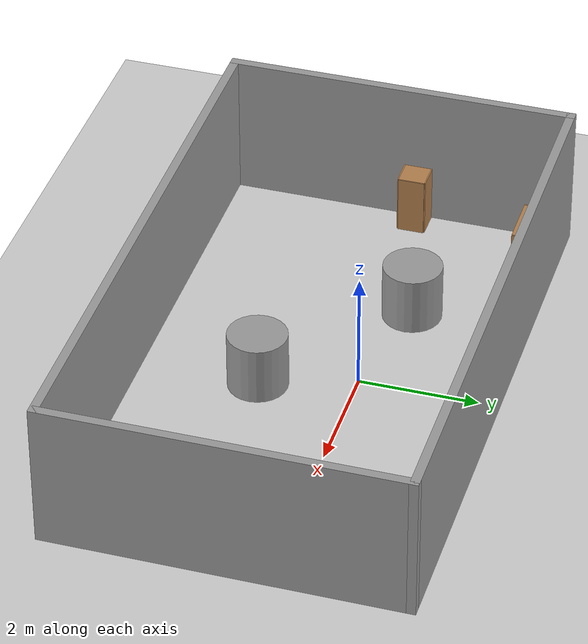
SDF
<sdf version="1.7">
 <world name="default">
  <light name="sun" type="directional">
   <pose>0 0 10 0 -0 0</pose>
   <diffuse>0.8 0.8 0.8 1</diffuse>
   <specular>0.2 0.2 0.2 1</specular>
   <attenuation>
    <range>1000</range>
    <constant>0.9</constant>
    <linear>0.01</linear>
    <quadratic>0.001</quadratic>
   </attenuation>
   <direction>-0.5 0.1 -0.9</direction>
   <spot><inner_angle>0</inner_angle><outer_angle>0</outer_angle><falloff>0</falloff></spot>
  </light>
  <model name="ground_plane">
   <static>1</static>
   <link name="link">
    <collision name="collision">
     <geometry><plane><normal>0 0 1</normal><size>100 100</size></plane></geometry>
     <surface><friction><ode><mu>100</mu><mu2>50</mu2></ode></friction></surface>
    </collision>
    <visual name="visual">
     <cast_shadows>0</cast_shadows>
     <geometry><plane><normal>0 0 1</normal><size>100 100</size></plane></geometry>
     <material>
      <script><uri>file://media/materials/scripts/gazebo.material</uri><name>Gazebo/Grey</name></script>
     </material>
    </visual>
   </link>
  </model>
  <gravity>0 0 -9.8</gravity>
  <magnetic_field>6e-06 2.3e-05 -4.2e-05</magnetic_field>
  <atmosphere type="adiabatic"/>
  <physics type="ode">
   <max_step_size>0.001</max_step_size>
   <real_time_factor>1</real_time_factor>
   <real_time_update_rate>1000</real_time_update_rate>
  </physics>
  <scene><ambient>0.4 0.4 0.4 1</ambient><background>0.7 0.7 0.7 1</background><shadows>1</shadows></scene>
  <spherical_coordinates>
   <surface_model>EARTH_WGS84</surface_model>
   <latitude_deg>0</latitude_deg>
   <longitude_deg>0</longitude_deg>
   <elevation>0</elevation>
   <heading_deg>0</heading_deg>
  </spherical_coordinates>
  <model name="mywall">
   <pose>0.126209 0.13294 0 0 -0 0</pose>
   <link name="Wall_12">
    <collision name="Wall_12_Collision">
     <geometry><box><size>6 0.15 2.5</size></box></geometry>
     <pose>0 0 1.25 0 -0 0</pose>
    </collision>
    <visual name="Wall_12_Visual">
     <pose>0 0 1.25 0 -0 0</pose>
     <geometry><box><size>6 0.15 2.5</size></box></geometry>
     <material>
      <script><uri>file://media/materials/scripts/gazebo.material</uri><name>Gazebo/Grey</name></script>
      <ambient>1 1 1 1</ambient>
     </material>
     <meta><layer>0</layer></meta>
    </visual>
    <pose>-4.925 -0.7825 0 0 -0 -1.5708</pose>
   </link>
   <link name="Wall_13">
    <collision name="Wall_13_Collision">
     <geometry><box><size>10 0.15 2.5</size></box></geometry>
     <pose>0 0 1.25 0 -0 0</pose>
    </collision>
    <visual name="Wall_13_Visual">
     <pose>0 0 1.25 0 -0 0</pose>
     <geometry><box><size>10 0.15 2.5</size></box></geometry>
     <material>
      <script><uri>file://media/materials/scripts/gazebo.material</uri><name>Gazebo/Grey</name></script>
      <ambient>1 1 1 1</ambient>
     </material>
     <meta><layer>0</layer></meta>
    </visual>
    <pose>0 -3.7075 0 0 -0 0</pose>
   </link>
   <link name="Wall_14">
    <collision name="Wall_14_Collision">
     <geometry><box><size>6 0.15 2.5</size></box></geometry>
     <pose>0 0 1.25 0 -0 0</pose>
    </collision>
    <visual name="Wall_14_Visual">
     <pose>0 0 1.25 0 -0 0</pose>
     <geometry><box><size>6 0.15 2.5</size></box></geometry>
     <material>
      <script><uri>file://media/materials/scripts/gazebo.material</uri><name>Gazebo/Grey</name></script>
      <ambient>1 1 1 1</ambient>
     </material>
     <meta><layer>0</layer></meta>
    </visual>
    <pose>4.925 -0.7825 0 0 -0 1.5708</pose>
   </link>
   <link name="Wall_15">
    <collision name="Wall_15_Collision">
     <geometry><box><size>10 0.15 2.5</size></box></geometry>
     <pose>0 0 1.25 0 -0 0</pose>
    </collision>
    <visual name="Wall_15_Visual">
     <pose>0 0 1.25 0 -0 0</pose>
     <geometry><box><size>10 0.15 2.5</size></box></geometry>
     <material>
      <script><uri>file://media/materials/scripts/gazebo.material</uri><name>Gazebo/Grey</name></script>
      <ambient>1 1 1 1</ambient>
     </material>
     <meta><layer>0</layer></meta>
    </visual>
    <pose>0 2.1425 0 0 -0 3.14159</pose>
   </link>
   <static>1</static>
  </model>
  <model name="bookshelf">
   <static>1</static>
   <link name="link">
    <inertial><mass>1</mass></inertial>
    <collision name="back">
     <pose>0 0.005 0.6 0 -0 0</pose>
     <geometry><box><size>0.9 0.01 1.2</size></box></geometry>
    </collision>
    <visual name="visual1">
     <pose>0 0.005 0.6 0 -0 0</pose>
     <geometry><box><size>0.9 0.01 1.2</size></box></geometry>
     <material>
      <script><uri>file://media/materials/scripts/gazebo.material</uri><name>Gazebo/Wood</name></script>
     </material>
    </visual>
    <collision name="left_side">
     <pose>0.45 -0.195 0.6 0 -0 0</pose>
     <geometry><box><size>0.02 0.4 1.2</size></box></geometry>
    </collision>
    <visual name="visual2">
     <pose>0.45 -0.195 0.6 0 -0 0</pose>
     <geometry><box><size>0.02 0.4 1.2</size></box></geometry>
     <material>
      <script><uri>file://media/materials/scripts/gazebo.material</uri><name>Gazebo/Wood</name></script>
     </material>
    </visual>
    <collision name="right_side">
     <pose>-0.45 -0.195 0.6 0 -0 0</pose>
     <geometry><box><size>0.02 0.4 1.2</size></box></geometry>
    </collision>
    <visual name="visual3">
     <pose>-0.45 -0.195 0.6 0 -0 0</pose>
     <geometry><box><size>0.02 0.4 1.2</size></box></geometry>
     <material>
      <script><uri>file://media/materials/scripts/gazebo.material</uri><name>Gazebo/Wood</name></script>
     </material>
    </visual>
    <collision name="bottom">
     <pose>0 -0.195 0.03 0 -0 0</pose>
     <geometry><box><size>0.88 0.4 0.06</size></box></geometry>
    </collision>
    <visual name="visual4">
     <pose>0 -0.195 0.03 0 -0 0</pose>
     <geometry><box><size>0.88 0.4 0.06</size></box></geometry>
     <material>
      <script><uri>file://media/materials/scripts/gazebo.material</uri><name>Gazebo/Wood</name></script>
     </material>
    </visual>
    <collision name="top">
     <pose>0 -0.195 1.19 0 -0 0</pose>
     <geometry><box><size>0.88 0.4 0.02</size></box></geometry>
    </collision>
    <visual name="visual5">
     <pose>0 -0.195 1.19 0 -0 0</pose>
     <geometry><box><size>0.88 0.4 0.02</size></box></geometry>
     <material>
      <script><uri>file://media/materials/scripts/gazebo.material</uri><name>Gazebo/Wood</name></script>
     </material>
    </visual>
    <collision name="low_shelf">
     <pose>0 -0.195 0.43 0 -0 0</pose>
     <geometry><box><size>0.88 0.4 0.02</size></box></geometry>
    </collision>
    <visual name="visual6">
     <pose>0 -0.195 0.43 0 -0 0</pose>
     <geometry><box><size>0.88 0.4 0.02</size></box></geometry>
     <material>
      <script><uri>file://media/materials/scripts/gazebo.material</uri><name>Gazebo/Wood</name></script>
     </material>
    </visual>
    <collision name="high_shelf">
     <pose>0 -0.195 0.8 0 -0 0</pose>
     <geometry><box><size>0.88 0.4 0.02</size></box></geometry>
    </collision>
    <visual name="visual7">
     <pose>0 -0.195 0.8 0 -0 0</pose>
     <geometry><box><size>0.88 0.4 0.02</size></box></geometry>
     <material>
      <script><uri>file://media/materials/scripts/gazebo.material</uri><name>Gazebo/Wood</name></script>
     </material>
    </visual>
   </link>
   <pose>-3.44 2.15018 0 0 -0 0</pose>
  </model>
  <model name="cabinet">
   <static>1</static>
   <link name="cabinet_bottom_plate">
    <inertial>
     <pose>0 0 -1 0 -0 0</pose>
     <inertia><ixx>2.05</ixx><ixy>0</ixy><ixz>0</ixz><iyy>2.05</iyy><iyz>0</iyz><izz>2.05</izz></inertia>
     <mass>25</mass>
    </inertial>
    <collision name="cabinet_bottom_plate_geom">
     <pose>0 0 0.01 0 -0 0</pose>
     <geometry><box><size>0.45 0.45 0.02</size></box></geometry>
    </collision>
    <visual name="cabinet_bottom_plate_geom_visual">
     <pose>0 0 0.01 0 -0 0</pose>
     <geometry><box><size>0.45 0.45 0.02</size></box></geometry>
     <material>
      <script><uri>file://media/materials/scripts/gazebo.material</uri><name>Gazebo/Wood</name></script>
     </material>
    </visual>
    <collision name="cabinet_bottom_plate_geom_cabinet_back_plate">
     <pose>0.235 0 0.51 0 -0 0</pose>
     <geometry><box><size>0.02 0.45 1.02</size></box></geometry>
    </collision>
    <visual name="cabinet_bottom_plate_geom_cabinet_back_plate_visual">
     <pose>0.235 0 0.51 0 -0 0</pose>
     <geometry><box><size>0.02 0.45 1.02</size></box></geometry>
     <material>
      <script><uri>file://media/materials/scripts/gazebo.material</uri><name>Gazebo/Wood</name></script>
     </material>
    </visual>
    <collision name="cabinet_bottom_plate_geom_cabinet_left_plate">
     <pose>0 0.235 0.51 0 -0 0</pose>
     <geometry><box><size>0.45 0.02 1.02</size></box></geometry>
    </collision>
    <visual name="cabinet_bottom_plate_geom_cabinet_left_plate_visual">
     <pose>0 0.235 0.51 0 -0 0</pose>
     <geometry><box><size>0.45 0.02 1.02</size></box></geometry>
     <material>
      <script><uri>file://media/materials/scripts/gazebo.material</uri><name>Gazebo/Wood</name></script>
     </material>
    </visual>
    <collision name="cabinet_bottom_plate_geom_cabinet_middle_plate">
     <pose>0 0 0.51 0 -0 0</pose>
     <geometry><box><size>0.45 0.45 0.02</size></box></geometry>
    </collision>
    <visual name="cabinet_bottom_plate_geom_cabinet_middle_plate_visual">
     <pose>0 0 0.51 0 -0 0</pose>
     <geometry><box><size>0.45 0.45 0.02</size></box></geometry>
     <material>
      <script><uri>file://media/materials/scripts/gazebo.material</uri><name>Gazebo/Wood</name></script>
     </material>
    </visual>
    <collision name="cabinet_bottom_plate_geom_cabinet_right_plate">
     <pose>0 -0.235 0.51 0 -0 0</pose>
     <geometry><box><size>0.45 0.02 1.02</size></box></geometry>
    </collision>
    <visual name="cabinet_bottom_plate_geom_cabinet_right_plate_visual">
     <pose>0 -0.235 0.51 0 -0 0</pose>
     <geometry><box><size>0.45 0.02 1.02</size></box></geometry>
     <material>
      <script><uri>file://media/materials/scripts/gazebo.material</uri><name>Gazebo/Wood</name></script>
     </material>
    </visual>
    <collision name="cabinet_bottom_plate_geom_cabinet_top_plate">
     <pose>0 0 1.01 0 -0 0</pose>
     <geometry><box><size>0.45 0.45 0.02</size></box></geometry>
    </collision>
    <visual name="cabinet_bottom_plate_geom_cabinet_top_plate_visual">
     <pose>0 0 1.01 0 -0 0</pose>
     <geometry><box><size>0.45 0.45 0.02</size></box></geometry>
     <material>
      <script><uri>file://media/materials/scripts/gazebo.material</uri><name>Gazebo/Wood</name></script>
     </material>
    </visual>
   </link>
   <pose>-4.48173 -0.296616 0 0 -0 0</pose>
  </model>
  <model name="unit_cylinder">
   <pose>0.506984 -1.54295 0.499992 -3e-06 3e-06 0</pose>
   <link name="link">
    <inertial>
     <mass>1</mass>
     <inertia><ixx>0.145833</ixx><ixy>0</ixy><ixz>0</ixz><iyy>0.145833</iyy><iyz>0</iyz><izz>0.125</izz></inertia>
    </inertial>
    <collision name="collision">
     <geometry><cylinder><radius>0.5</radius><length>1</length></cylinder></geometry>
    </collision>
    <visual name="visual">
     <geometry><cylinder><radius>0.5</radius><length>1</length></cylinder></geometry>
     <material>
      <script><name>Gazebo/Grey</name><uri>file://media/materials/scripts/gazebo.material</uri></script>
     </material>
    </visual>
   </link>
  </model>
  <model name="unit_cylinder_0">
   <pose>-1.96997 0.351846 0.499998 3e-06 -3e-06 0</pose>
   <link name="link">
    <inertial>
     <mass>1</mass>
     <inertia><ixx>0.145833</ixx><ixy>0</ixy><ixz>0</ixz><iyy>0.145833</iyy><iyz>0</iyz><izz>0.125</izz></inertia>
    </inertial>
    <collision name="collision">
     <geometry><cylinder><radius>0.5</radius><length>1</length></cylinder></geometry>
    </collision>
    <visual name="visual">
     <geometry><cylinder><radius>0.5</radius><length>1</length></cylinder></geometry>
     <material>
      <script><name>Gazebo/Grey</name><uri>file://media/materials/scripts/gazebo.material</uri></script>
     </material>
    </visual>
   </link>
  </model>
 </world>
</sdf>
